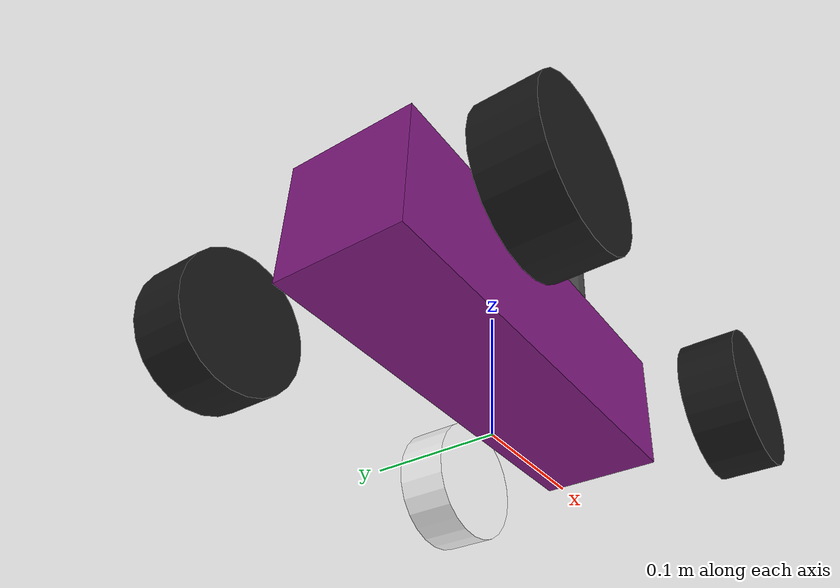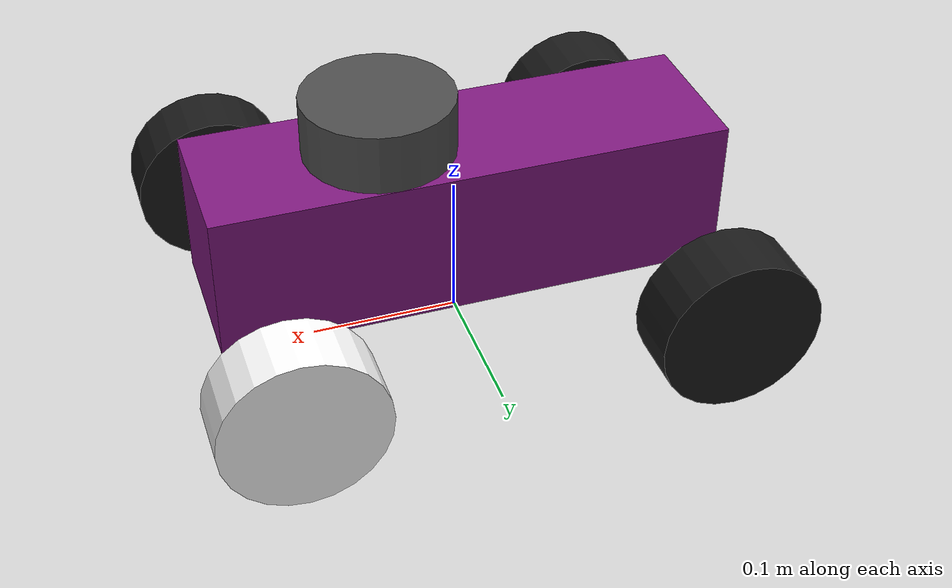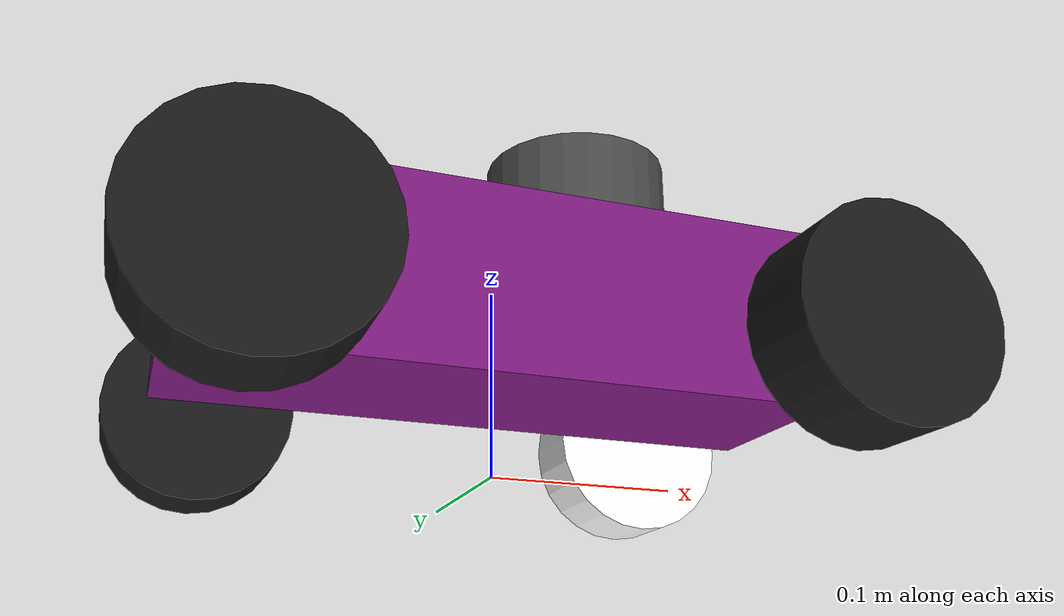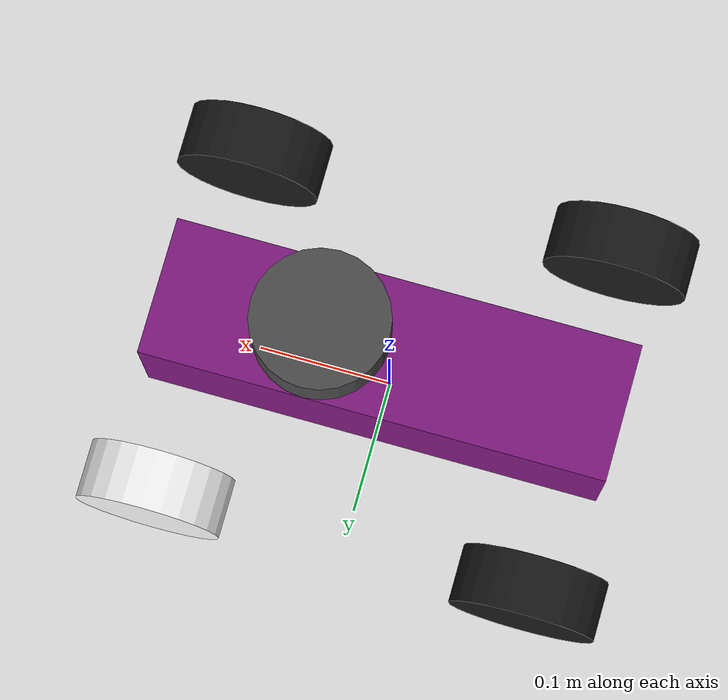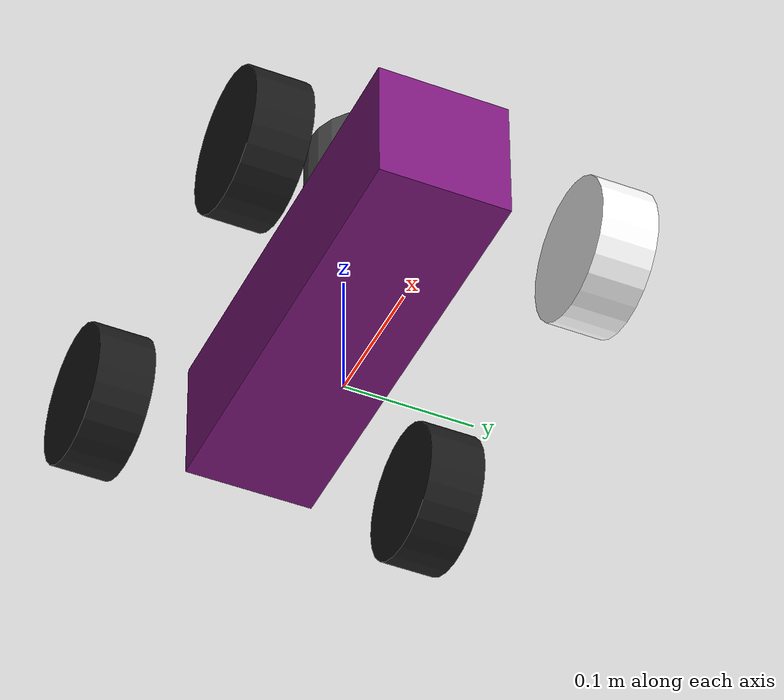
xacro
<robot name="car" xmlns:xacro="http://www.ros.org/wiki/xacro">
      <link name="base_link">
        <inertial>
          <origin xyz="0 -0 0.08" rpy="0 -0 0"/>
          <mass value="1.14395" />
          <inertia
            ixx="0.126164"
            ixy="0"
            ixz="0"
            iyy="0.416519"
            iyz="0"
            izz="0.481014"
          />
        </inertial>
        <visual>
          <origin xyz="-0 0 0.09" rpy="0 -0 0"/>
          <geometry>
            <box size="0.34 0.1 0.1" />
          </geometry>
          <material name="pla">
             <color rgba="0.5 0.1 0.5 1.0" />
          </material>
        </visual>
        <collision>
          <origin xyz="-0 0 0.08" rpy="0 -0 0"/>
          <geometry>
            <box size="0.35 0.1 0.1" />
          </geometry>
        </collision>
      </link>

      <link name="base_footprint" />
      <joint name="base_joint" type="fixed">
             <parent link="base_link"/>
             <child link="base_footprint"/>
             <origin xyz="0.0 0.0 -0.15" rpy="0.0 0.0 0.0" />
     </joint>

      <link name="base_laser">
        <inertial>
          <mass value="0.1"/>
          <inertia
            ixx="0.000166667"
            iyy="0.000166667"
            izz="0.000166667"
            ixy="0.0"
            ixz="0.0"
            iyz="0.0"
          />
        </inertial>
        <collision>
          <geometry>
            <cylinder radius="0.05" length="0.04" />
          </geometry>
        </collision>
        <visual>
          <geometry>
            <cylinder radius="0.05" length="0.04" />
          </geometry>
          <material name="pla_black">
             <color rgba="0.3 0.3 0.3 1.0" />
          </material>
        </visual>
      </link>

      <link name="rear_left_wheel">
        <inertial>
          <mass value="2.0" />
          <inertia
            ixx="0.145833"
            ixy="0"
            ixz="0"
            iyy="0.145833"
            iyz="0"
            izz="0.125"
          />
        </inertial>
        <visual>
          <geometry>
            <cylinder radius="0.054" length="0.043" />
          </geometry>
          <material name="rubber">
             <color rgba="0.1 0.1 0.1 1" />
          </material>
        </visual>
        <collision name='collision'>
          <geometry>
            <cylinder radius="0.054" length="0.043" />
          </geometry>
        </collision>
      </link>

      <link name="rear_right_wheel">
        <inertial>
          <mass value="2.0" />
          <inertia
            ixx="0.145833"
            ixy="0"
            ixz="0"
            iyy="0.145833"
            iyz="0"
            izz="0.125"
          />
        </inertial>
        <visual>
          <geometry>
            <cylinder radius="0.054" length="0.043" />
          </geometry>
          <material name="rubber" />
        </visual>
        <collision name='collision'>
          <geometry>
            <cylinder radius="0.054" length="0.043" />
          </geometry>
        </collision>
      </link>

      <link name="front_left_wheel">
        <inertial>
          <mass value="2.0" />
          <inertia
            ixx="0.145833"
            ixy="0"
            ixz="0"
            iyy="0.145833"
            iyz="0"
            izz="0.125"
          />
        </inertial>
        <visual>
          <geometry>
            <cylinder radius="0.054" length="0.043" />
          </geometry>
          <material name="rubber">
             <color rgba="1.0 1.0 1.0 1.0" />
          </material>
        </visual>
        <collision name='collision'>
          <geometry>
            <cylinder radius="0.054" length="0.043" />
          </geometry>
        </collision>
      </link>

      <link name="front_right_wheel">
        <inertial>
          <mass value="2.0" />
          <inertia
            ixx="0.145833"
            ixy="0"
            ixz="0"
            iyy="0.145833"
            iyz="0"
            izz="0.125"
          />
        </inertial>
        <visual>
          <geometry>
            <cylinder radius="0.054" length="0.043" />
          </geometry>
          <material name="rubber" />
        </visual>
        <collision name='collision'>
          <geometry>
            <cylinder radius="0.054" length="0.043" />
          </geometry>
        </collision>
      </link>

      <link name="front_left_hub">
        <inertial>
          <mass value="0.0001" />
          <inertia
            ixx="0.001"
            ixy="0"
            ixz="0"
            iyy="0.001"
            iyz="0"
            izz="0.001"
          />
        </inertial>
        <collision name='collision'>
          <geometry>
            <box size="0.05 0.08 0.05" />
          </geometry>
        </collision>
      </link>

      <link name="front_right_hub">
        <inertial>
          <mass value="0.0001" />
          <inertia
            ixx="0.001"
            ixy="0"
            ixz="0"
            iyy="0.001"
            iyz="0"
            izz="0.001"
          />
        </inertial>
        <collision name='collision'>
          <geometry>
            <box size="0.05 0.08 0.05" />
          </geometry>
        </collision>
      </link>

      <joint name="lidar_sensor_joint" type="fixed">
        <origin xyz="0.05 -0 0.16" rpy="0 0 0" />
        <parent link="base_link" />
        <child link="base_laser" />
      </joint>

      <joint name="rear_left_wheel_joint" type="continuous">
        <origin xyz="-0.14 0.13 0.054" rpy="-1.5707 0 0" />
        <parent link="base_link" />
        <child link="rear_left_wheel" />
        <axis xyz="0 0 1" />
      </joint>

      <joint name="rear_right_wheel_joint" type="continuous">
        <origin xyz="-0.14 -0.13 0.054" rpy="-1.5707 0 0" />
        <parent link="base_link" />
        <child link="rear_right_wheel" />
        <axis xyz="0 0 1" />
      </joint>

      <joint name="front_left_wheel_joint" type="continuous">
        <origin xyz="-0 0.02 0" rpy="-1.5707 0 0" />
        <parent link="front_left_hub" />
        <child link="front_left_wheel" />
        <axis xyz="0 0 1" />
      </joint>

      <joint name="front_right_wheel_joint" type="continuous">
        <origin xyz="-0 -0.02 0" rpy="-1.5707 0 0" />
        <parent link="front_right_hub" />
        <child link="front_right_wheel" />
        <axis xyz="0 0 1" />
      </joint>

      <joint name="front_left_hub_joint" type="continuous">
        <origin xyz="0.14 0.11 0.054" rpy="0 0 0" />
        <parent link="base_link" />
        <child link="front_left_hub" />
        <axis xyz="0 0 1" />
      </joint>

      <joint name="front_right_hub_joint" type="continuous">
        <origin xyz="0.14 -0.11 0.054" rpy="0 0 0" />
        <parent link="base_link" />
        <child link="front_right_hub" />
        <axis xyz="0 0 1" />
      </joint>

      <xacro:include filename="$(find rviz_and_sim)/urdf/car.gazebo.xacro" />
</robot>
